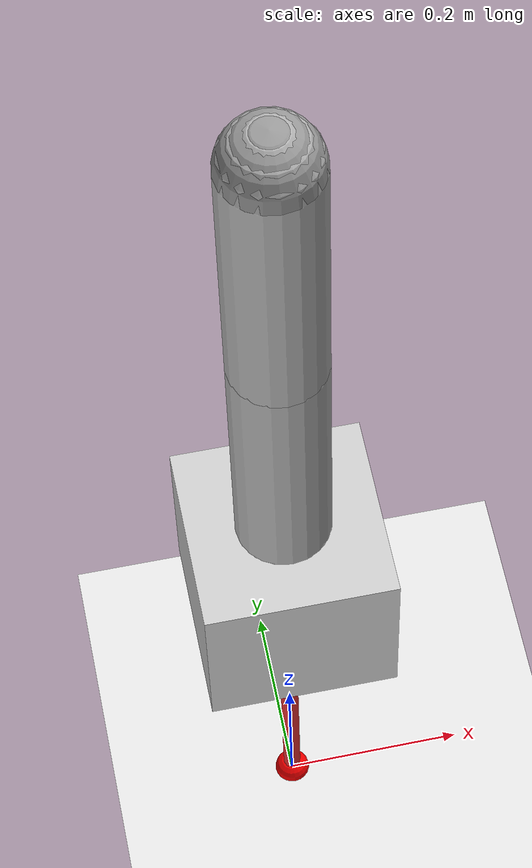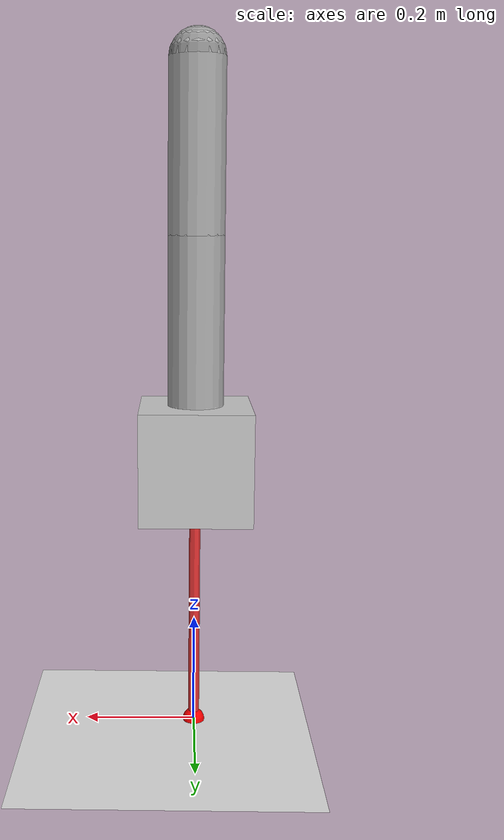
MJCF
<mujoco model="simple_robot">
    <compiler angle="radian" />
    <option integrator="RK4" timestep="0.01" />

    <worldbody>
      <light directional="true" diffuse=".8 .8 .8" specular=".3 .3 .3" pos="0 0 4" dir="0 0 -1"/>
      <body name="ground" pos="0 0 0">
        <site name="ground" pos="0 0 0" size="0.02" rgba="1 0 0 1" />
        <geom type="plane" size="10 10 0.1" rgba="0.9 0.9 0.9 1" />
      </body>
      <body name="robot_base" pos="0 0 0.5">
        <geom type="box" size="0.1 0.1 0.1" rgba="0.8 0.8 0.8 1" />
        <body name="link1" pos="0 0 0.1">
          <joint type="hinge" axis="0 1 0" name="joint1" />
          <geom type="capsule" fromto="0 0 0 0 0 0.3" size="0.05" rgba="0.7 0.7 0.7 1" />
          <body name="link2" pos="0 0 0.3">
            <joint type="hinge" axis="0 1 0" name="joint2" />
            <geom type="capsule" fromto="0 0 0 0 0 0.3" size="0.05" rgba="0.7 0.7 0.7 1" />
            <body name="eff" pos="0 0 0.3">
              <geom type="sphere" size="0.05" rgba="0.6 0.6 0.6 1" />
              <site name="eff_site" pos="0 0 0" size="0.02" rgba="1 0 0 1" />
            </body>
          </body>
        </body>
      </body>
    </worldbody>

    <tendon>
      <spatial name="tendon1" stiffness="200" damping="20" width="0.01" rgba="0.9 0.2 0.2 1">
        <site site="eff_site" />
        <site site="ground" />
      </spatial>
    </tendon>

    <sensor>
      <force site="eff_site" />
    </sensor>

    <actuator>
      <motor joint="joint1" ctrlrange="-1 1" />
      <motor joint="joint2" ctrlrange="-1 1" />
    </actuator>
  </mujoco>
